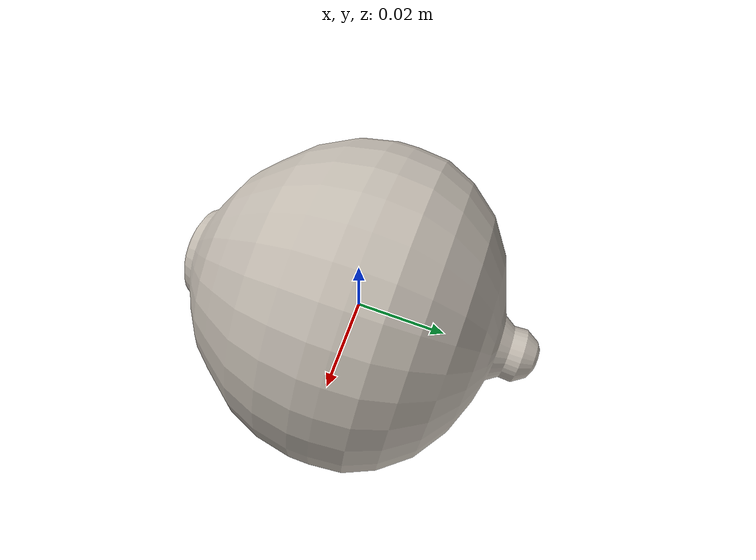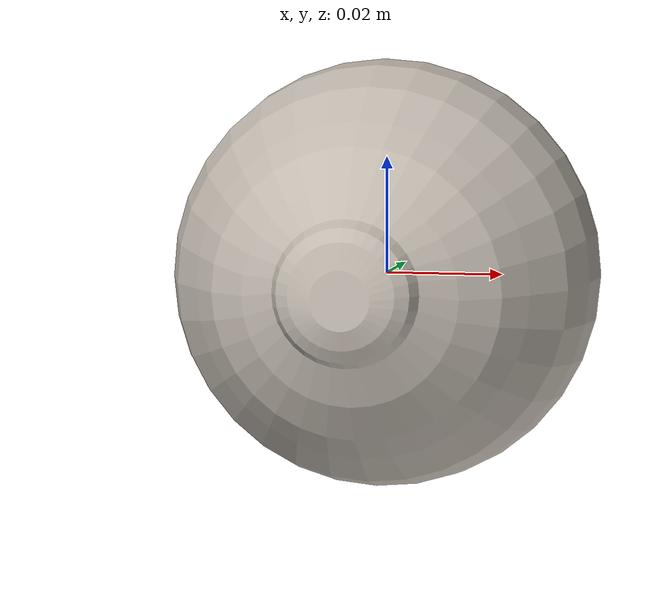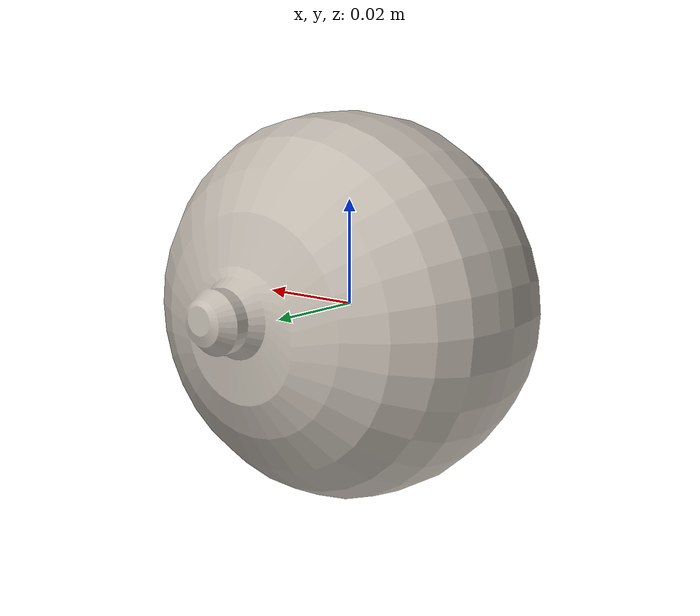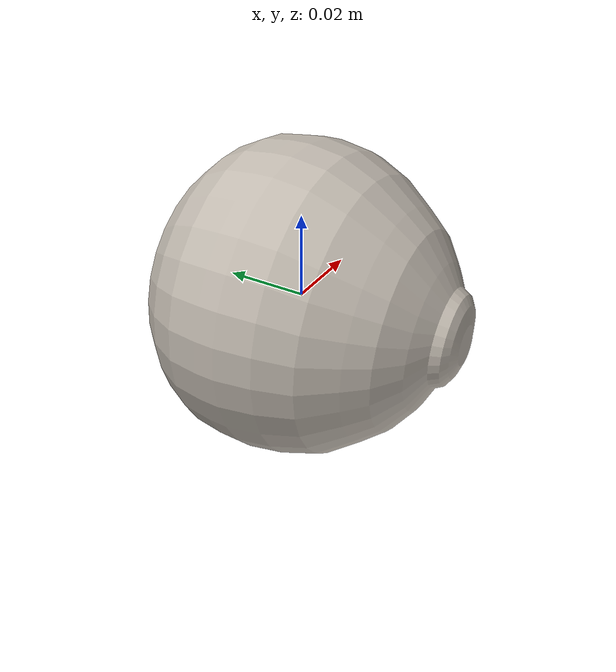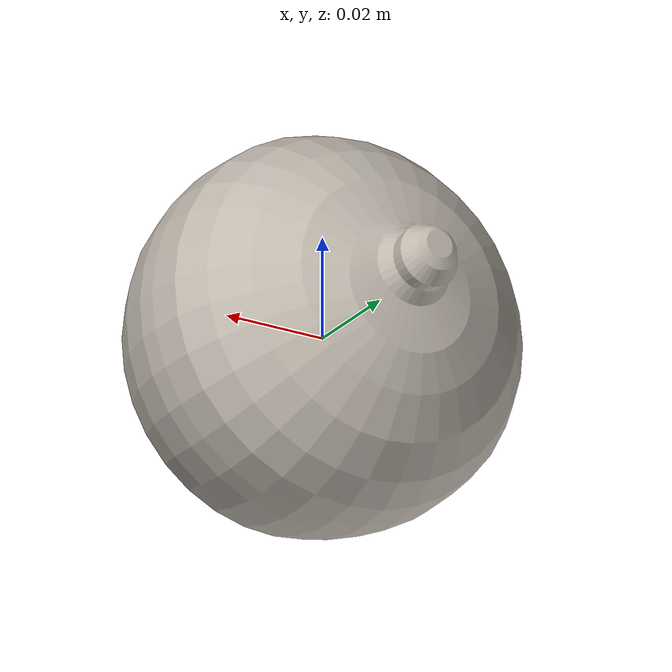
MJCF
<mujoco model="onion_7">
  <asset>
    <mesh file="visual/model_normalized_0.obj" name="model_normalized_0_vis" scale="0.07999999999999997 0.07999999999999997 0.07999999999999997" refquat="0.7071067811865475 0.7071067811865476 0.0 0.0"/>
    <mesh file="collision/model_normalized_collision_22.obj" name="model_normalized_collision_22._coll" scale="0.07999999999999997 0.07999999999999997 0.07999999999999997" refquat="0.7071067811865475 0.7071067811865476 0.0 0.0"/>
    <mesh file="collision/model_normalized_collision_23.obj" name="model_normalized_collision_23._coll" scale="0.07999999999999997 0.07999999999999997 0.07999999999999997" refquat="0.7071067811865475 0.7071067811865476 0.0 0.0"/>
    <mesh file="collision/model_normalized_collision_21.obj" name="model_normalized_collision_21._coll" scale="0.07999999999999997 0.07999999999999997 0.07999999999999997" refquat="0.7071067811865475 0.7071067811865476 0.0 0.0"/>
    <mesh file="collision/model_normalized_collision_20.obj" name="model_normalized_collision_20._coll" scale="0.07999999999999997 0.07999999999999997 0.07999999999999997" refquat="0.7071067811865475 0.7071067811865476 0.0 0.0"/>
    <mesh file="collision/model_normalized_collision_24.obj" name="model_normalized_collision_24._coll" scale="0.07999999999999997 0.07999999999999997 0.07999999999999997" refquat="0.7071067811865475 0.7071067811865476 0.0 0.0"/>
    <mesh file="collision/model_normalized_collision_30.obj" name="model_normalized_collision_30._coll" scale="0.07999999999999997 0.07999999999999997 0.07999999999999997" refquat="0.7071067811865475 0.7071067811865476 0.0 0.0"/>
    <mesh file="collision/model_normalized_collision_18.obj" name="model_normalized_collision_18._coll" scale="0.07999999999999997 0.07999999999999997 0.07999999999999997" refquat="0.7071067811865475 0.7071067811865476 0.0 0.0"/>
    <mesh file="collision/model_normalized_collision_19.obj" name="model_normalized_collision_19._coll" scale="0.07999999999999997 0.07999999999999997 0.07999999999999997" refquat="0.7071067811865475 0.7071067811865476 0.0 0.0"/>
    <mesh file="collision/model_normalized_collision_31.obj" name="model_normalized_collision_31._coll" scale="0.07999999999999997 0.07999999999999997 0.07999999999999997" refquat="0.7071067811865475 0.7071067811865476 0.0 0.0"/>
    <mesh file="collision/model_normalized_collision_25.obj" name="model_normalized_collision_25._coll" scale="0.07999999999999997 0.07999999999999997 0.07999999999999997" refquat="0.7071067811865475 0.7071067811865476 0.0 0.0"/>
    <mesh file="collision/model_normalized_collision_27.obj" name="model_normalized_collision_27._coll" scale="0.07999999999999997 0.07999999999999997 0.07999999999999997" refquat="0.7071067811865475 0.7071067811865476 0.0 0.0"/>
    <mesh file="collision/model_normalized_collision_26.obj" name="model_normalized_collision_26._coll" scale="0.07999999999999997 0.07999999999999997 0.07999999999999997" refquat="0.7071067811865475 0.7071067811865476 0.0 0.0"/>
    <mesh file="collision/model_normalized_collision_9.obj" name="model_normalized_collision_9._coll" scale="0.07999999999999997 0.07999999999999997 0.07999999999999997" refquat="0.7071067811865475 0.7071067811865476 0.0 0.0"/>
    <mesh file="collision/model_normalized_collision_8.obj" name="model_normalized_collision_8._coll" scale="0.07999999999999997 0.07999999999999997 0.07999999999999997" refquat="0.7071067811865475 0.7071067811865476 0.0 0.0"/>
    <mesh file="collision/model_normalized_collision_6.obj" name="model_normalized_collision_6._coll" scale="0.07999999999999997 0.07999999999999997 0.07999999999999997" refquat="0.7071067811865475 0.7071067811865476 0.0 0.0"/>
    <mesh file="collision/model_normalized_collision_7.obj" name="model_normalized_collision_7._coll" scale="0.07999999999999997 0.07999999999999997 0.07999999999999997" refquat="0.7071067811865475 0.7071067811865476 0.0 0.0"/>
    <mesh file="collision/model_normalized_collision_5.obj" name="model_normalized_collision_5._coll" scale="0.07999999999999997 0.07999999999999997 0.07999999999999997" refquat="0.7071067811865475 0.7071067811865476 0.0 0.0"/>
    <mesh file="collision/model_normalized_collision_4.obj" name="model_normalized_collision_4._coll" scale="0.07999999999999997 0.07999999999999997 0.07999999999999997" refquat="0.7071067811865475 0.7071067811865476 0.0 0.0"/>
    <mesh file="collision/model_normalized_collision_0.obj" name="model_normalized_collision_0._coll" scale="0.07999999999999997 0.07999999999999997 0.07999999999999997" refquat="0.7071067811865475 0.7071067811865476 0.0 0.0"/>
    <mesh file="collision/model_normalized_collision_1.obj" name="model_normalized_collision_1._coll" scale="0.07999999999999997 0.07999999999999997 0.07999999999999997" refquat="0.7071067811865475 0.7071067811865476 0.0 0.0"/>
    <mesh file="collision/model_normalized_collision_3.obj" name="model_normalized_collision_3._coll" scale="0.07999999999999997 0.07999999999999997 0.07999999999999997" refquat="0.7071067811865475 0.7071067811865476 0.0 0.0"/>
    <mesh file="collision/model_normalized_collision_2.obj" name="model_normalized_collision_2._coll" scale="0.07999999999999997 0.07999999999999997 0.07999999999999997" refquat="0.7071067811865475 0.7071067811865476 0.0 0.0"/>
    <mesh file="collision/model_normalized_collision_17.obj" name="model_normalized_collision_17._coll" scale="0.07999999999999997 0.07999999999999997 0.07999999999999997" refquat="0.7071067811865475 0.7071067811865476 0.0 0.0"/>
    <mesh file="collision/model_normalized_collision_16.obj" name="model_normalized_collision_16._coll" scale="0.07999999999999997 0.07999999999999997 0.07999999999999997" refquat="0.7071067811865475 0.7071067811865476 0.0 0.0"/>
    <mesh file="collision/model_normalized_collision_28.obj" name="model_normalized_collision_28._coll" scale="0.07999999999999997 0.07999999999999997 0.07999999999999997" refquat="0.7071067811865475 0.7071067811865476 0.0 0.0"/>
    <mesh file="collision/model_normalized_collision_14.obj" name="model_normalized_collision_14._coll" scale="0.07999999999999997 0.07999999999999997 0.07999999999999997" refquat="0.7071067811865475 0.7071067811865476 0.0 0.0"/>
    <mesh file="collision/model_normalized_collision_15.obj" name="model_normalized_collision_15._coll" scale="0.07999999999999997 0.07999999999999997 0.07999999999999997" refquat="0.7071067811865475 0.7071067811865476 0.0 0.0"/>
    <mesh file="collision/model_normalized_collision_29.obj" name="model_normalized_collision_29._coll" scale="0.07999999999999997 0.07999999999999997 0.07999999999999997" refquat="0.7071067811865475 0.7071067811865476 0.0 0.0"/>
    <mesh file="collision/model_normalized_collision_11.obj" name="model_normalized_collision_11._coll" scale="0.07999999999999997 0.07999999999999997 0.07999999999999997" refquat="0.7071067811865475 0.7071067811865476 0.0 0.0"/>
    <mesh file="collision/model_normalized_collision_10.obj" name="model_normalized_collision_10._coll" scale="0.07999999999999997 0.07999999999999997 0.07999999999999997" refquat="0.7071067811865475 0.7071067811865476 0.0 0.0"/>
    <mesh file="collision/model_normalized_collision_12.obj" name="model_normalized_collision_12._coll" scale="0.07999999999999997 0.07999999999999997 0.07999999999999997" refquat="0.7071067811865475 0.7071067811865476 0.0 0.0"/>
    <mesh file="collision/model_normalized_collision_13.obj" name="model_normalized_collision_13._coll" scale="0.07999999999999997 0.07999999999999997 0.07999999999999997" refquat="0.7071067811865475 0.7071067811865476 0.0 0.0"/>
    <texture type="2d" name="image0" file="visual/image0.png"/>
    <material name="Onion_Material" texture="image0" specular="0.5" shininess="0.359999993"/>
  </asset>
  <worldbody>
  <body>
      <body name="object">
        <geom solimp="0.998 0.998 0.001" solref="0.001 1" density="100" friction="0.95 0.3 0.1" type="mesh" mesh="model_normalized_0_vis" conaffinity="0" contype="0" group="1" material="Onion_Material"/>
        <geom solimp="0.998 0.998 0.001" solref="0.001 1" density="100" friction="0.95 0.3 0.1" type="mesh" mesh="model_normalized_collision_22._coll" group="0" rgba="0.8 0.8 0.8 0.0"/>
        <geom solimp="0.998 0.998 0.001" solref="0.001 1" density="100" friction="0.95 0.3 0.1" type="mesh" mesh="model_normalized_collision_23._coll" group="0" rgba="0.8 0.8 0.8 0.0"/>
        <geom solimp="0.998 0.998 0.001" solref="0.001 1" density="100" friction="0.95 0.3 0.1" type="mesh" mesh="model_normalized_collision_21._coll" group="0" rgba="0.8 0.8 0.8 0.0"/>
        <geom solimp="0.998 0.998 0.001" solref="0.001 1" density="100" friction="0.95 0.3 0.1" type="mesh" mesh="model_normalized_collision_20._coll" group="0" rgba="0.8 0.8 0.8 0.0"/>
        <geom solimp="0.998 0.998 0.001" solref="0.001 1" density="100" friction="0.95 0.3 0.1" type="mesh" mesh="model_normalized_collision_24._coll" group="0" rgba="0.8 0.8 0.8 0.0"/>
        <geom solimp="0.998 0.998 0.001" solref="0.001 1" density="100" friction="0.95 0.3 0.1" type="mesh" mesh="model_normalized_collision_30._coll" group="0" rgba="0.8 0.8 0.8 0.0"/>
        <geom solimp="0.998 0.998 0.001" solref="0.001 1" density="100" friction="0.95 0.3 0.1" type="mesh" mesh="model_normalized_collision_18._coll" group="0" rgba="0.8 0.8 0.8 0.0"/>
        <geom solimp="0.998 0.998 0.001" solref="0.001 1" density="100" friction="0.95 0.3 0.1" type="mesh" mesh="model_normalized_collision_19._coll" group="0" rgba="0.8 0.8 0.8 0.0"/>
        <geom solimp="0.998 0.998 0.001" solref="0.001 1" density="100" friction="0.95 0.3 0.1" type="mesh" mesh="model_normalized_collision_31._coll" group="0" rgba="0.8 0.8 0.8 0.0"/>
        <geom solimp="0.998 0.998 0.001" solref="0.001 1" density="100" friction="0.95 0.3 0.1" type="mesh" mesh="model_normalized_collision_25._coll" group="0" rgba="0.8 0.8 0.8 0.0"/>
        <geom solimp="0.998 0.998 0.001" solref="0.001 1" density="100" friction="0.95 0.3 0.1" type="mesh" mesh="model_normalized_collision_27._coll" group="0" rgba="0.8 0.8 0.8 0.0"/>
        <geom solimp="0.998 0.998 0.001" solref="0.001 1" density="100" friction="0.95 0.3 0.1" type="mesh" mesh="model_normalized_collision_26._coll" group="0" rgba="0.8 0.8 0.8 0.0"/>
        <geom solimp="0.998 0.998 0.001" solref="0.001 1" density="100" friction="0.95 0.3 0.1" type="mesh" mesh="model_normalized_collision_9._coll" group="0" rgba="0.8 0.8 0.8 0.0"/>
        <geom solimp="0.998 0.998 0.001" solref="0.001 1" density="100" friction="0.95 0.3 0.1" type="mesh" mesh="model_normalized_collision_8._coll" group="0" rgba="0.8 0.8 0.8 0.0"/>
        <geom solimp="0.998 0.998 0.001" solref="0.001 1" density="100" friction="0.95 0.3 0.1" type="mesh" mesh="model_normalized_collision_6._coll" group="0" rgba="0.8 0.8 0.8 0.0"/>
        <geom solimp="0.998 0.998 0.001" solref="0.001 1" density="100" friction="0.95 0.3 0.1" type="mesh" mesh="model_normalized_collision_7._coll" group="0" rgba="0.8 0.8 0.8 0.0"/>
        <geom solimp="0.998 0.998 0.001" solref="0.001 1" density="100" friction="0.95 0.3 0.1" type="mesh" mesh="model_normalized_collision_5._coll" group="0" rgba="0.8 0.8 0.8 0.0"/>
        <geom solimp="0.998 0.998 0.001" solref="0.001 1" density="100" friction="0.95 0.3 0.1" type="mesh" mesh="model_normalized_collision_4._coll" group="0" rgba="0.8 0.8 0.8 0.0"/>
        <geom solimp="0.998 0.998 0.001" solref="0.001 1" density="100" friction="0.95 0.3 0.1" type="mesh" mesh="model_normalized_collision_0._coll" group="0" rgba="0.8 0.8 0.8 0.0"/>
        <geom solimp="0.998 0.998 0.001" solref="0.001 1" density="100" friction="0.95 0.3 0.1" type="mesh" mesh="model_normalized_collision_1._coll" group="0" rgba="0.8 0.8 0.8 0.0"/>
        <geom solimp="0.998 0.998 0.001" solref="0.001 1" density="100" friction="0.95 0.3 0.1" type="mesh" mesh="model_normalized_collision_3._coll" group="0" rgba="0.8 0.8 0.8 0.0"/>
        <geom solimp="0.998 0.998 0.001" solref="0.001 1" density="100" friction="0.95 0.3 0.1" type="mesh" mesh="model_normalized_collision_2._coll" group="0" rgba="0.8 0.8 0.8 0.0"/>
        <geom solimp="0.998 0.998 0.001" solref="0.001 1" density="100" friction="0.95 0.3 0.1" type="mesh" mesh="model_normalized_collision_17._coll" group="0" rgba="0.8 0.8 0.8 0.0"/>
        <geom solimp="0.998 0.998 0.001" solref="0.001 1" density="100" friction="0.95 0.3 0.1" type="mesh" mesh="model_normalized_collision_16._coll" group="0" rgba="0.8 0.8 0.8 0.0"/>
        <geom solimp="0.998 0.998 0.001" solref="0.001 1" density="100" friction="0.95 0.3 0.1" type="mesh" mesh="model_normalized_collision_28._coll" group="0" rgba="0.8 0.8 0.8 0.0"/>
        <geom solimp="0.998 0.998 0.001" solref="0.001 1" density="100" friction="0.95 0.3 0.1" type="mesh" mesh="model_normalized_collision_14._coll" group="0" rgba="0.8 0.8 0.8 0.0"/>
        <geom solimp="0.998 0.998 0.001" solref="0.001 1" density="100" friction="0.95 0.3 0.1" type="mesh" mesh="model_normalized_collision_15._coll" group="0" rgba="0.8 0.8 0.8 0.0"/>
        <geom solimp="0.998 0.998 0.001" solref="0.001 1" density="100" friction="0.95 0.3 0.1" type="mesh" mesh="model_normalized_collision_29._coll" group="0" rgba="0.8 0.8 0.8 0.0"/>
        <geom solimp="0.998 0.998 0.001" solref="0.001 1" density="100" friction="0.95 0.3 0.1" type="mesh" mesh="model_normalized_collision_11._coll" group="0" rgba="0.8 0.8 0.8 0.0"/>
        <geom solimp="0.998 0.998 0.001" solref="0.001 1" density="100" friction="0.95 0.3 0.1" type="mesh" mesh="model_normalized_collision_10._coll" group="0" rgba="0.8 0.8 0.8 0.0"/>
        <geom solimp="0.998 0.998 0.001" solref="0.001 1" density="100" friction="0.95 0.3 0.1" type="mesh" mesh="model_normalized_collision_12._coll" group="0" rgba="0.8 0.8 0.8 0.0"/>
        <geom solimp="0.998 0.998 0.001" solref="0.001 1" density="100" friction="0.95 0.3 0.1" type="mesh" mesh="model_normalized_collision_13._coll" group="0" rgba="0.8 0.8 0.8 0.0"/>
      </body>
      <site rgba="0 0 0 0" size="0.005" pos="-0.00018364719999999885 -5.200000000016301e-07 -0.03580656159999999" name="bottom_site"/>
      <site rgba="0 0 0 0" size="0.005" pos="-0.00018364719999999885 -5.200000000016301e-07 0.03543919999999999" name="top_site"/>
      <site rgba="0 0 0 0" size="0.005" pos="0.03543927119999999 0.03933385519999998 -0.00018368080000000114" name="horizontal_radius_site"/>
    </body>
    </worldbody>
</mujoco>
